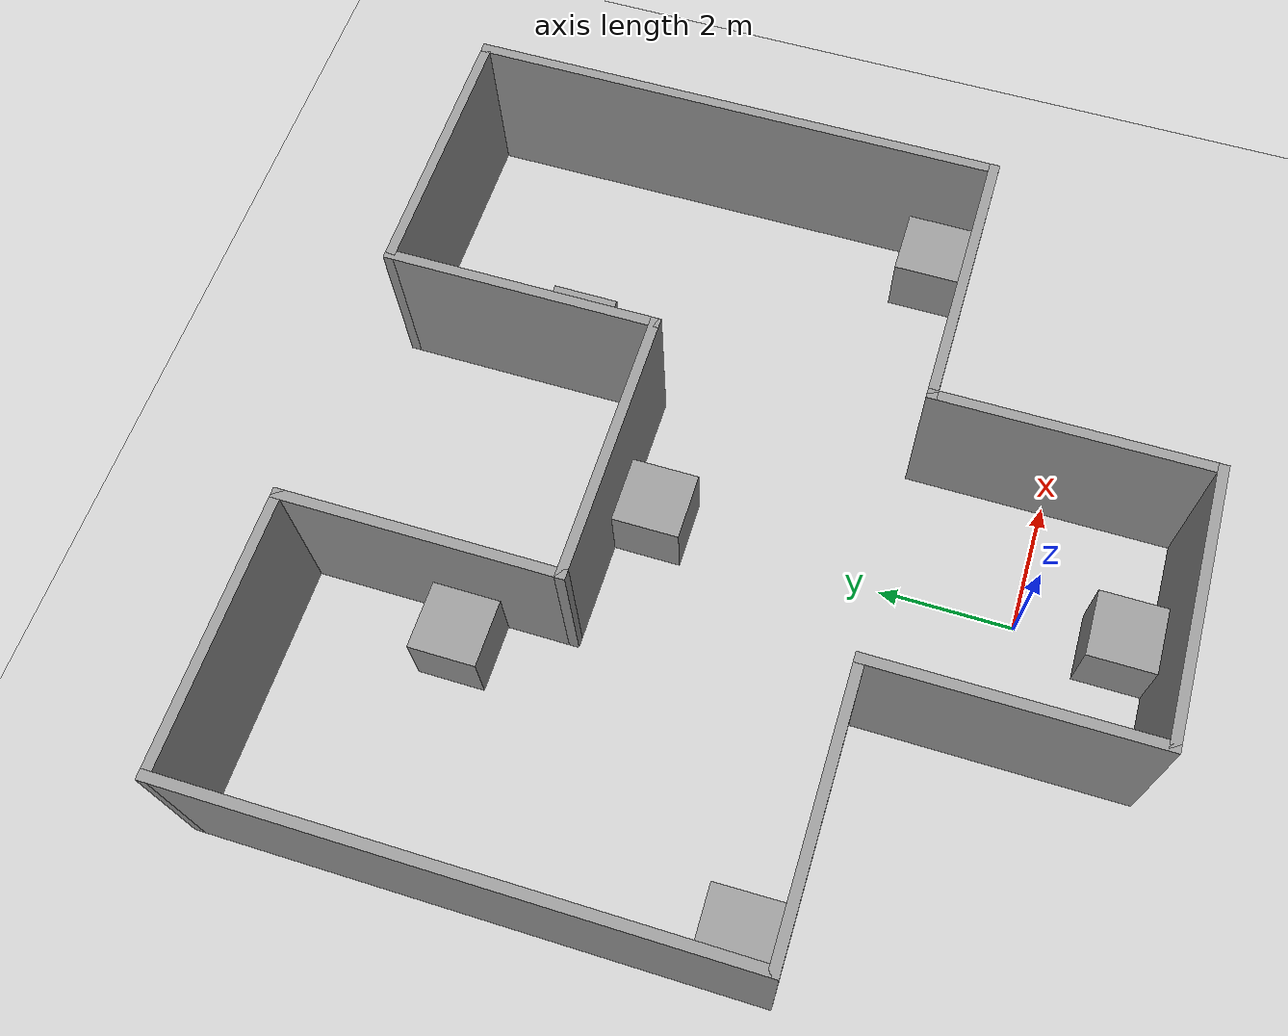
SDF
<sdf version="1.6">
 <world name="default">
  <light name="sun" type="directional">
   <pose>0 0 10 0 -0 0</pose>
   <diffuse>0.8 0.8 0.8 1</diffuse>
   <specular>0.1 0.1 0.1 1</specular>
   <attenuation>
    <range>1000</range>
    <constant>0.9</constant>
    <linear>0.01</linear>
    <quadratic>0.001</quadratic>
   </attenuation>
   <direction>-0.5 0.5 -1</direction>
  </light>
  <model name="ground_plane">
   <static>1</static>
   <link name="link">
    <collision name="collision">
     <geometry><plane><normal>0 0 1</normal><size>100 100</size></plane></geometry>
     <surface><friction><ode><mu>100</mu><mu2>50</mu2></ode></friction></surface>
    </collision>
    <visual name="visual">
     <cast_shadows>0</cast_shadows>
     <geometry><plane><normal>0 0 1</normal><size>100 100</size></plane></geometry>
     <material>
      <script><uri>file://media/materials/scripts/gazebo.material</uri><name>Gazebo/Grey</name></script>
     </material>
    </visual>
   </link>
  </model>
  <physics name="default_physics" default="0" type="ode">
   <real_time_update_rate>1000</real_time_update_rate>
   <max_step_size>0.001</max_step_size>
   <real_time_factor>1</real_time_factor>
   <ode>
    <solver>
     <type>quick</type>
     <iters>150</iters>
     <precon_iters>0</precon_iters>
     <sor>1.4</sor>
     <use_dynamic_moi_rescaling>1</use_dynamic_moi_rescaling>
    </solver>
    <constraints>
     <cfm>1e-05</cfm>
     <erp>0.2</erp>
     <contact_max_correcting_vel>2000</contact_max_correcting_vel>
     <contact_surface_layer>0.01</contact_surface_layer>
    </constraints>
   </ode>
  </physics>
  <scene><ambient>0.4 0.4 0.4 1</ambient><background>0.7 0.7 0.7 1</background><shadows>1</shadows></scene>
  <gravity>0 0 -9.8</gravity>
  <magnetic_field>6e-06 2.3e-05 -4.2e-05</magnetic_field>
  <atmosphere type="adiabatic"/>
  <spherical_coordinates>
   <surface_model>EARTH_WGS84</surface_model>
   <latitude_deg>0</latitude_deg>
   <longitude_deg>0</longitude_deg>
   <elevation>0</elevation>
   <heading_deg>0</heading_deg>
  </spherical_coordinates>
  <model name="y_room">
   <pose>0 4 0 0 -0 0</pose>
   <link name="Wall_0">
    <collision name="Wall_0_Collision">
     <geometry><box><size>4.15 0.15 2.5</size></box></geometry>
     <pose>0 0 1.25 0 -0 0</pose>
    </collision>
    <visual name="Wall_0_Visual">
     <pose>0 0 1.25 0 -0 0</pose>
     <geometry><box><size>4.15 0.15 2.5</size></box></geometry>
     <material>
      <script><uri>file://media/materials/scripts/gazebo.material</uri><name>Gazebo/Grey</name></script>
      <ambient>1 1 1 1</ambient>
     </material>
    </visual>
    <pose>0 -6 0 0 -0 0</pose>
   </link>
   <link name="Wall_11">
    <collision name="Wall_11_Collision">
     <geometry><box><size>4.15 0.15 2.5</size></box></geometry>
     <pose>0 0 1.25 0 -0 0</pose>
    </collision>
    <visual name="Wall_11_Visual">
     <pose>0 0 1.25 0 -0 0</pose>
     <geometry><box><size>4.15 0.15 2.5</size></box></geometry>
     <material>
      <script><uri>file://media/materials/scripts/gazebo.material</uri><name>Gazebo/Grey</name></script>
      <ambient>1 1 1 1</ambient>
     </material>
    </visual>
    <pose>2 4 0 0 0 -1.5708</pose>
   </link>
   <link name="Wall_13">
    <collision name="Wall_13_Collision">
     <geometry><box><size>4.15 0.15 2.5</size></box></geometry>
     <pose>0 0 1.25 0 -0 0</pose>
    </collision>
    <visual name="Wall_13_Visual">
     <pose>0 0 1.25 0 -0 0</pose>
     <geometry><box><size>4.15 0.15 2.5</size></box></geometry>
     <material>
      <script><uri>file://media/materials/scripts/gazebo.material</uri><name>Gazebo/Grey</name></script>
      <ambient>1 1 1 1</ambient>
     </material>
    </visual>
    <pose>0 2 0 0 -0 3.14159</pose>
   </link>
   <link name="Wall_15">
    <collision name="Wall_15_Collision">
     <geometry><box><size>4.15 0.15 2.5</size></box></geometry>
     <pose>0 0 1.25 0 -0 0</pose>
    </collision>
    <visual name="Wall_15_Visual">
     <pose>0 0 1.25 0 -0 0</pose>
     <geometry><box><size>4.15 0.15 2.5</size></box></geometry>
     <material>
      <script><uri>file://media/materials/scripts/gazebo.material</uri><name>Gazebo/Grey</name></script>
      <ambient>1 1 1 1</ambient>
     </material>
    </visual>
    <pose>-2 4 0 0 -0 1.5708</pose>
   </link>
   <link name="Wall_17">
    <collision name="Wall_17_Collision">
     <geometry><box><size>4.15 0.15 2.5</size></box></geometry>
     <pose>0 0 1.25 0 -0 0</pose>
    </collision>
    <visual name="Wall_17_Visual">
     <pose>0 0 1.25 0 -0 0</pose>
     <geometry><box><size>4.15 0.15 2.5</size></box></geometry>
     <material>
      <script><uri>file://media/materials/scripts/gazebo.material</uri><name>Gazebo/Grey</name></script>
      <ambient>1 1 1 1</ambient>
     </material>
    </visual>
    <pose>-4 6 0 0 -0 3.14159</pose>
   </link>
   <link name="Wall_19">
    <collision name="Wall_19_Collision">
     <geometry><box><size>8.15 0.15 2.5</size></box></geometry>
     <pose>0 0 1.25 0 -0 0</pose>
    </collision>
    <visual name="Wall_19_Visual">
     <pose>0 0 1.25 0 -0 0</pose>
     <geometry><box><size>8.15 0.15 2.5</size></box></geometry>
     <material>
      <script><uri>file://media/materials/scripts/gazebo.material</uri><name>Gazebo/Grey</name></script>
      <ambient>1 1 1 1</ambient>
     </material>
    </visual>
    <pose>-6 2 0 0 0 -1.5708</pose>
   </link>
   <link name="Wall_2">
    <collision name="Wall_2_Collision">
     <geometry><box><size>4.15 0.15 2.5</size></box></geometry>
     <pose>0 0 1.25 0 -0 0</pose>
    </collision>
    <visual name="Wall_2_Visual">
     <pose>0 0 1.25 0 -0 0</pose>
     <geometry><box><size>4.15 0.15 2.5</size></box></geometry>
     <material>
      <script><uri>file://media/materials/scripts/gazebo.material</uri><name>Gazebo/Grey</name></script>
      <ambient>1 1 1 1</ambient>
     </material>
    </visual>
    <pose>2 -4 0 0 -0 1.5708</pose>
   </link>
   <link name="Wall_21">
    <collision name="Wall_21_Collision">
     <geometry><box><size>4.15 0.15 2.5</size></box></geometry>
     <pose>0 0 1.25 0 -0 0</pose>
    </collision>
    <visual name="Wall_21_Visual">
     <pose>0 0 1.25 0 -0 0</pose>
     <geometry><box><size>4.15 0.15 2.5</size></box></geometry>
     <material>
      <script><uri>file://media/materials/scripts/gazebo.material</uri><name>Gazebo/Grey</name></script>
      <ambient>1 1 1 1</ambient>
     </material>
    </visual>
    <pose>-4 -2 0 0 -0 0</pose>
   </link>
   <link name="Wall_24">
    <collision name="Wall_24_Collision">
     <geometry><box><size>4.15 0.15 2.5</size></box></geometry>
     <pose>0 0 1.25 0 -0 0</pose>
    </collision>
    <visual name="Wall_24_Visual">
     <pose>0 0 1.25 0 -0 0</pose>
     <geometry><box><size>4.15 0.15 2.5</size></box></geometry>
     <material>
      <script><uri>file://media/materials/scripts/gazebo.material</uri><name>Gazebo/Grey</name></script>
      <ambient>1 1 1 1</ambient>
     </material>
    </visual>
    <pose>-2 -4 0 0 0 -1.5708</pose>
   </link>
   <link name="Wall_4">
    <collision name="Wall_4_Collision">
     <geometry><box><size>4.15 0.15 2.5</size></box></geometry>
     <pose>0 0 1.25 0 -0 0</pose>
    </collision>
    <visual name="Wall_4_Visual">
     <pose>0 0 1.25 0 -0 0</pose>
     <geometry><box><size>4.15 0.15 2.5</size></box></geometry>
     <material>
      <script><uri>file://media/materials/scripts/gazebo.material</uri><name>Gazebo/Grey</name></script>
      <ambient>1 1 1 1</ambient>
     </material>
    </visual>
    <pose>4 -2 0 0 -0 0</pose>
   </link>
   <link name="Wall_6">
    <collision name="Wall_6_Collision">
     <geometry><box><size>8.15 0.15 2.5</size></box></geometry>
     <pose>0 0 1.25 0 -0 0</pose>
    </collision>
    <visual name="Wall_6_Visual">
     <pose>0 0 1.25 0 -0 0</pose>
     <geometry><box><size>8.15 0.15 2.5</size></box></geometry>
     <material>
      <script><uri>file://media/materials/scripts/gazebo.material</uri><name>Gazebo/Grey</name></script>
      <ambient>1 1 1 1</ambient>
     </material>
    </visual>
    <pose>6 2 0 0 -0 1.5708</pose>
   </link>
   <link name="Wall_9">
    <collision name="Wall_9_Collision">
     <geometry><box><size>4.15 0.15 2.5</size></box></geometry>
     <pose>0 0 1.25 0 -0 0</pose>
    </collision>
    <visual name="Wall_9_Visual">
     <pose>0 0 1.25 0 -0 0</pose>
     <geometry><box><size>4.15 0.15 2.5</size></box></geometry>
     <material>
      <script><uri>file://media/materials/scripts/gazebo.material</uri><name>Gazebo/Grey</name></script>
      <ambient>1 1 1 1</ambient>
     </material>
    </visual>
    <pose>4 6 0 0 -0 3.14159</pose>
   </link>
   <static>1</static>
  </model>
  <model name="unit_box_0">
   <pose>0 -1.425 0.5 0 -0 0</pose>
   <link name="link">
    <inertial>
     <mass>1</mass>
     <inertia>
      <ixx>0.166667</ixx>
      <ixy>0</ixy>
      <ixz>0</ixz>
      <iyy>0.166667</iyy>
      <iyz>0</iyz>
      <izz>0.166667</izz>
     </inertia>
    </inertial>
    <collision name="collision"><geometry><box><size>1 1 1</size></box></geometry></collision>
    <visual name="visual">
     <geometry><box><size>1 1 1</size></box></geometry>
     <material>
      <script><name>Gazebo/Grey</name><uri>file://media/materials/scripts/gazebo.material</uri></script>
     </material>
    </visual>
   </link>
  </model>
  <model name="unit_box_1">
   <pose>0.069949 5.425 0.5 0 0 -1e-06</pose>
   <link name="link">
    <inertial>
     <mass>1</mass>
     <inertia>
      <ixx>0.166667</ixx>
      <ixy>0</ixy>
      <ixz>0</ixz>
      <iyy>0.166667</iyy>
      <iyz>0</iyz>
      <izz>0.166667</izz>
     </inertia>
    </inertial>
    <collision name="collision"><geometry><box><size>1 1 1</size></box></geometry></collision>
    <visual name="visual">
     <geometry><box><size>1 1 1</size></box></geometry>
     <material>
      <script><name>Gazebo/Grey</name><uri>file://media/materials/scripts/gazebo.material</uri></script>
     </material>
    </visual>
   </link>
  </model>
  <model name="unit_box_2">
   <pose>-2.575 7.5 0.5 0 -0 5e-06</pose>
   <link name="link">
    <inertial>
     <mass>1</mass>
     <inertia>
      <ixx>0.166667</ixx>
      <ixy>0</ixy>
      <ixz>0</ixz>
      <iyy>0.166667</iyy>
      <iyz>0</iyz>
      <izz>0.166667</izz>
     </inertia>
    </inertial>
    <collision name="collision"><geometry><box><size>1 1 1</size></box></geometry></collision>
    <visual name="visual">
     <geometry><box><size>1 1 1</size></box></geometry>
     <material>
      <script><name>Gazebo/Grey</name><uri>file://media/materials/scripts/gazebo.material</uri></script>
     </material>
    </visual>
   </link>
  </model>
  <model name="unit_box_3">
   <pose>2.575 7.5 0.5 0 0 -5e-06</pose>
   <link name="link">
    <inertial>
     <mass>1</mass>
     <inertia>
      <ixx>0.166667</ixx>
      <ixy>0</ixy>
      <ixz>0</ixz>
      <iyy>0.166667</iyy>
      <iyz>0</iyz>
      <izz>0.166667</izz>
     </inertia>
    </inertial>
    <collision name="collision"><geometry><box><size>1 1 1</size></box></geometry></collision>
    <visual name="visual">
     <geometry><box><size>1 1 1</size></box></geometry>
     <material>
      <script><name>Gazebo/Grey</name><uri>file://media/materials/scripts/gazebo.material</uri></script>
     </material>
    </visual>
   </link>
  </model>
  <model name="unit_box_4">
   <pose>-5.40505 2.58432 0.5 0 -0 0.016295</pose>
   <link name="link">
    <inertial>
     <mass>1</mass>
     <inertia>
      <ixx>0.166667</ixx>
      <ixy>0</ixy>
      <ixz>0</ixz>
      <iyy>0.166667</iyy>
      <iyz>0</iyz>
      <izz>0.166667</izz>
     </inertia>
    </inertial>
    <collision name="collision"><geometry><box><size>1 1 1</size></box></geometry></collision>
    <visual name="visual">
     <geometry><box><size>1 1 1</size></box></geometry>
     <material>
      <script><name>Gazebo/Grey</name><uri>file://media/materials/scripts/gazebo.material</uri></script>
     </material>
    </visual>
   </link>
  </model>
  <model name="unit_box_5">
   <pose>5.42419 2.5813 0.5 0 0 -2.5e-05</pose>
   <link name="link">
    <inertial>
     <mass>1</mass>
     <inertia>
      <ixx>0.166667</ixx>
      <ixy>0</ixy>
      <ixz>0</ixz>
      <iyy>0.166667</iyy>
      <iyz>0</iyz>
      <izz>0.166667</izz>
     </inertia>
    </inertial>
    <collision name="collision"><geometry><box><size>1 1 1</size></box></geometry></collision>
    <visual name="visual">
     <geometry><box><size>1 1 1</size></box></geometry>
     <material>
      <script><name>Gazebo/Grey</name><uri>file://media/materials/scripts/gazebo.material</uri></script>
     </material>
    </visual>
   </link>
  </model>
  <light name="user_directional_light_0" type="directional">
   <pose>4.61452 0.614764 1 0 -0 0</pose>
   <diffuse>0.5 0.5 0.5 1</diffuse>
   <specular>0.1 0.1 0.1 1</specular>
   <direction>0.1 0.1 -0.9</direction>
   <attenuation>
    <range>20</range>
    <constant>0.5</constant>
    <linear>0.01</linear>
    <quadratic>0.001</quadratic>
   </attenuation>
  </light>
 </world>
</sdf>
